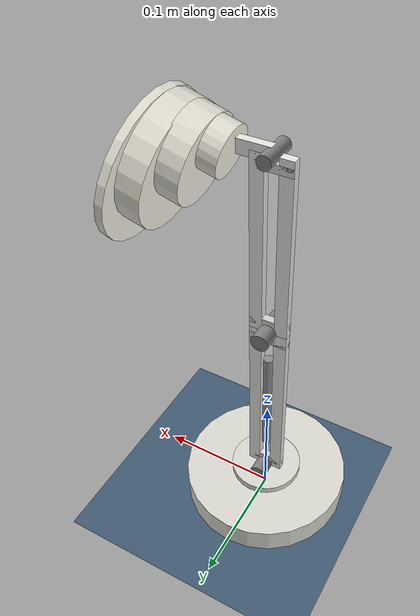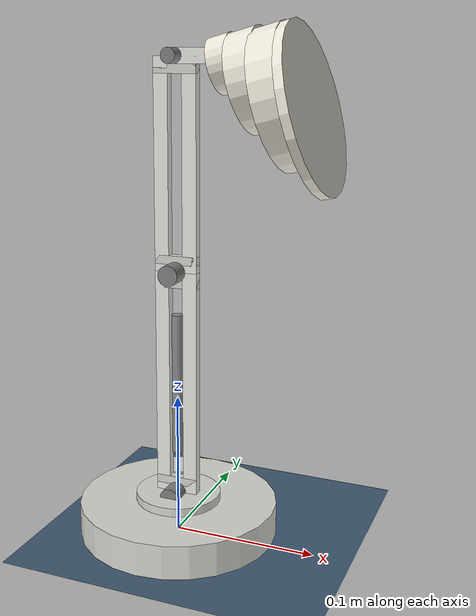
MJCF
<mujoco model="luxo_lamp">
  <compiler angle="degree" autolimits="true"/>

  <option gravity="0 0 -9.81" timestep="0.002"/>

  <default>
    <joint damping="2.0" armature="0.01"/>
    <geom condim="3" friction="1.0 0.005 0.001"/>
    <motor ctrlrange="-15 15" ctrllimited="true"/>
  </default>

  <asset>
    <texture type="2d" name="grid" builtin="checker" width="512" height="512"
             rgb1="0.2 0.3 0.4" rgb2="0.3 0.4 0.5"/>
    <material name="grid" texture="grid" texrepeat="8 8" reflectance="0.2"/>
    <material name="base_mat" rgba="0.85 0.85 0.82 1"/>
    <material name="arm_mat" rgba="0.9 0.9 0.88 1"/>
    <material name="head_mat" rgba="0.92 0.90 0.85 1"/>
    <material name="link_mat" rgba="0.82 0.82 0.80 1"/>
    <material name="spring_mat" rgba="0.55 0.55 0.55 1"/>
    <material name="joint_mat" rgba="0.5 0.5 0.5 1"/>
    <material name="bulb_mat" rgba="1 1 0.85 0.9"/>
  </asset>

  <worldbody>
    <!-- Ground plane -->
    <geom type="plane" size="2 2 0.01" material="grid"/>
    <light pos="0 -0.8 1.5" dir="0 0.5 -1" diffuse="0.9 0.9 0.9"/>
    <light pos="0.8 0.5 1.5" dir="-0.5 -0.5 -1" diffuse="0.5 0.5 0.5"/>

    <!-- === LAMP BASE === -->
    <body name="base" pos="0 0 0.012">
      <geom name="base_plate" type="cylinder" size="0.07 0.012" mass="2.0" material="base_mat"/>
      <geom name="base_dome" type="cylinder" pos="0 0 0.012" size="0.03 0.006" mass="0.1"
            material="base_mat"/>
      <joint name="base_yaw" type="hinge" axis="0 0 1" range="-180 180"
             stiffness="15" springref="0" damping="5"/>

      <!-- === LOWER ARM ASSEMBLY === -->
      <body name="lower_arm" pos="0 0 0.018">
        <!-- Joint pin -->
        <geom name="lower_pivot" type="cylinder" size="0.007 0.016" euler="90 0 0"
              mass="0.02" material="joint_mat"/>

        <!-- Lower arm: ~45deg from vertical at rest -->
        <joint name="lower_arm_pitch" type="hinge" axis="0 1 0" range="-10 110"
               stiffness="80" springref="45" damping="5"/>

        <!-- Front link -->
        <geom name="lower_front" type="box" pos="0.01 0 0.08" size="0.005 0.003 0.08"
              mass="0.04" material="arm_mat"/>
        <!-- Rear link -->
        <geom name="lower_rear" type="box" pos="-0.01 0 0.08" size="0.005 0.003 0.08"
              mass="0.04" material="arm_mat"/>
        <!-- Bottom brace -->
        <geom name="lower_brace_bot" type="box" pos="0 0 0.008" size="0.015 0.003 0.003"
              mass="0.005" material="link_mat"/>
        <!-- Top brace -->
        <geom name="lower_brace_top" type="box" pos="0 0 0.152" size="0.015 0.003 0.003"
              mass="0.005" material="link_mat"/>
        <!-- Spring -->
        <geom name="spring" type="cylinder" pos="0 0 0.08" size="0.004 0.05"
              mass="0.03" material="spring_mat"/>

        <!-- === UPPER ARM ASSEMBLY === -->
        <body name="upper_arm" pos="0 0 0.16">
          <!-- Joint pin -->
          <geom name="upper_pivot" type="cylinder" size="0.007 0.016" euler="90 0 0"
                mass="0.02" material="joint_mat"/>

          <!-- Upper arm folds back to create Z. springref=-100 -->
          <joint name="upper_arm_pitch" type="hinge" axis="0 1 0" range="-150 10"
                 stiffness="65" springref="-100" damping="5"/>

          <!-- Front link -->
          <geom name="upper_front" type="box" pos="0.01 0 0.07" size="0.005 0.003 0.07"
                mass="0.035" material="arm_mat"/>
          <!-- Rear link -->
          <geom name="upper_rear" type="box" pos="-0.01 0 0.07" size="0.005 0.003 0.07"
                mass="0.035" material="arm_mat"/>
          <!-- Bottom brace -->
          <geom name="upper_brace_bot" type="box" pos="0 0 0.008" size="0.015 0.003 0.003"
                mass="0.005" material="link_mat"/>
          <!-- Top brace -->
          <geom name="upper_brace_top" type="box" pos="0 0 0.132" size="0.015 0.003 0.003"
                mass="0.005" material="link_mat"/>

          <!-- === HEAD === -->
          <body name="head" pos="0 0 0.14">
            <!-- Joint pin -->
            <geom name="head_pivot" type="cylinder" size="0.005 0.013" euler="90 0 0"
                  mass="0.01" material="joint_mat"/>

            <!-- Head spring to keep shade pointing forward/down -->
            <joint name="head_tilt" type="hinge" axis="0 1 0" range="-90 90"
                   stiffness="30" springref="55" damping="2"/>

            <!-- Neck -->
            <geom name="neck" type="box" pos="0.012 0 0" size="0.012 0.003 0.005"
                  mass="0.01" material="arm_mat"/>

            <!-- === SHADE (cone) === -->
            <!-- Inner narrow -->
            <geom name="shade_base" type="cylinder" pos="0.035 0 -0.005" euler="0 75 0"
                  size="0.018 0.007" mass="0.015" material="head_mat"/>
            <!-- Mid -->
            <geom name="shade_mid" type="cylinder" pos="0.055 0 -0.015" euler="0 75 0"
                  size="0.032 0.009" mass="0.025" material="head_mat"/>
            <!-- Outer wide -->
            <geom name="shade_outer" type="cylinder" pos="0.075 0 -0.025" euler="0 75 0"
                  size="0.045 0.009" mass="0.035" material="head_mat"/>
            <!-- Rim -->
            <geom name="shade_rim" type="cylinder" pos="0.09 0 -0.032" euler="0 75 0"
                  size="0.055 0.003" mass="0.015" material="head_mat"/>

            <!-- Bulb -->
            <geom name="bulb" type="sphere" pos="0.06 0 -0.018" size="0.01"
                  mass="0.005" material="bulb_mat"/>

            <!-- Shade light -->
            <light pos="0.065 0 -0.02" dir="0.5 0 -0.8" diffuse="0.4 0.4 0.3"
                   cutoff="60" exponent="20"/>
          </body>
        </body>
      </body>
    </body>
  </worldbody>

  <actuator>
    <motor name="base_yaw_motor" joint="base_yaw" gear="5"/>
    <motor name="lower_arm_motor" joint="lower_arm_pitch" gear="10"/>
    <motor name="upper_arm_motor" joint="upper_arm_pitch" gear="8"/>
    <motor name="head_tilt_motor" joint="head_tilt" gear="4"/>
  </actuator>

  <sensor>
    <jointpos name="base_yaw_pos" joint="base_yaw"/>
    <jointpos name="lower_arm_pos" joint="lower_arm_pitch"/>
    <jointpos name="upper_arm_pos" joint="upper_arm_pitch"/>
    <jointpos name="head_tilt_pos" joint="head_tilt"/>
    <jointvel name="base_yaw_vel" joint="base_yaw"/>
    <jointvel name="lower_arm_vel" joint="lower_arm_pitch"/>
    <jointvel name="upper_arm_vel" joint="upper_arm_pitch"/>
    <jointvel name="head_tilt_vel" joint="head_tilt"/>
  </sensor>
</mujoco>
